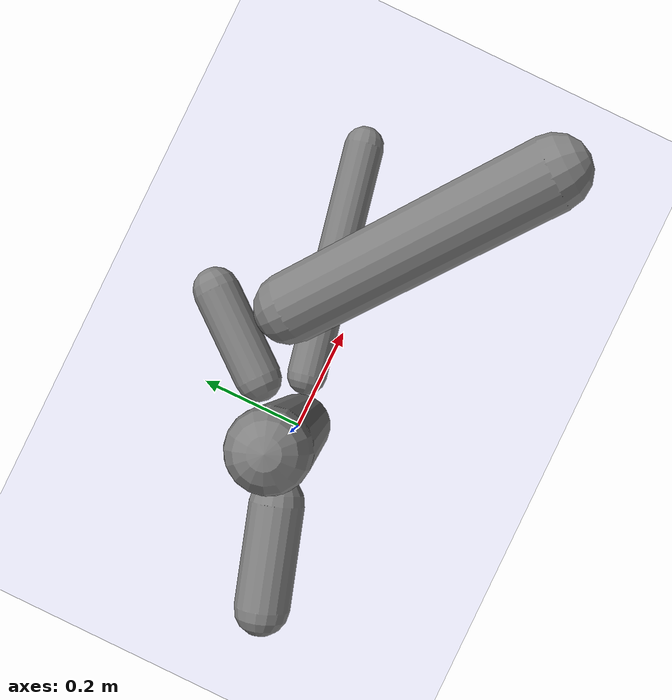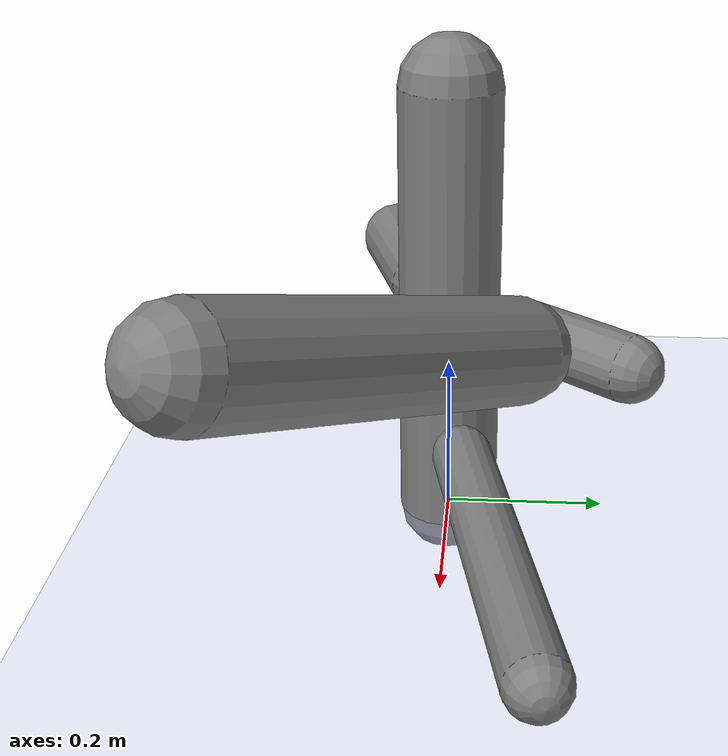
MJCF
<?xml version='1.0' encoding='UTF-8'?>
<mujoco model="robot_model">
  <worldbody>
    <light name="light" pos="0 -3 10" dir="0 0.5 -1" diffuse=".8 .8 .8" specular="0.1 0.1 0.1"/>
    <geom name="floor" type="plane" size="10.0 10.0 0.1" pos="0 0 0" rgba="0.8 0.8 1 1" contype="2" conaffinity="1"/>
    <body name="limb0" pos="0 0 0">
      <geom name="limb0_geom" type="capsule" fromto="0 0 0 0 0 0.5526269610092502" size="0.06246653167678622" density="796.5934046713226" contype="1" conaffinity="2"/>
      <site type="sphere" size="0.01" name="limb0_site0" pos="0.06616385889769526 0.08244480077257166 0.27924548388113235" quat="0.7071067811865476 -0.5514782239966858 0.44257402596341 0.0"/>
      <site type="sphere" size="0.01" name="limb0_site1" pos="0.10046093926683684 0.020852091672058662 0.12507774437851668" quat="0.7071067811865476 -0.14370701995890695 0.6923498338372952 0.0"/>
      <site type="sphere" size="0.01" name="limb0_site2" pos="-0.10815393811490609 -0.034451397314172946 0.26491593429950255" quat="0.7071067811865476 0.21461672715809735 -0.6737504437282003 0.0"/>
      <freejoint name="limb0_root"/>
      <body name="limb1" pos="0.06616385889769526 0.08244480077257166 0.27924548388113235" quat="0.7071067811865476 -0.5514782239966858 0.44257402596341 0.0">
        <geom name="limb1_geom" type="capsule" fromto="0 0 0 0 0 0.16136599457657547" size="0.03924440152628014" density="1063.8814954702987" contype="1" conaffinity="2"/>
        <site type="sphere" size="0.01" name="limb1_site0" pos="0.057378042192360146 -0.08583220095448735 0.07997658092785001" quat="0.7071067811865476 0.5878530016335616 0.3929743610853153 0.0"/>
        <body name="limb2" pos="0.057378042192360146 -0.08583220095448735 0.07997658092785001" quat="0.7071067811865476 0.5878530016335616 0.3929743610853153 0.0">
          <geom name="limb2_geom" type="capsule" fromto="0 0 0 0 0 0.46493007053566165" size="0.06" density="974.6337823020274" contype="1" conaffinity="2"/>
          <joint name="joint_limb1_limb2_0" type="hinge" axis="0 1 0" range="-79.82709602001019 79.82709602001019" damping="5.0"/>
        </body>
        <joint name="joint_limb0_limb1_0" type="hinge" axis="0 0 1" range="-59.96207299018732 59.96207299018732" damping="5.0"/>
      </body>
      <body name="limb3" pos="0.10046093926683684 0.020852091672058662 0.12507774437851668" quat="0.7071067811865476 -0.14370701995890695 0.6923498338372952 0.0">
        <geom name="limb3_geom" type="capsule" fromto="0 0 0 0 0 0.42812311774438233" size="0.03613566150384233" density="1116.2896742078215" contype="1" conaffinity="2"/>
        <joint name="joint_limb0_limb3_0" type="hinge" axis="1 0 0" range="-97.29787056611062 97.29787056611062" damping="5.0"/>
      </body>
      <body name="limb4" pos="-0.10815393811490609 -0.034451397314172946 0.26491593429950255" quat="0.7071067811865476 0.21461672715809735 -0.6737504437282003 0.0">
        <geom name="limb4_geom" type="capsule" fromto="0 0 0 0 0 0.1756841044802058" size="0.04704193984257633" density="984.254461993807" contype="1" conaffinity="2"/>
        <joint name="joint_limb0_limb4_0" type="hinge" axis="0 0 1" range="-65.65785036981373 65.65785036981373" damping="5.0"/>
      </body>
    </body>
  </worldbody>
  <actuator>
    <position name="position_actuator_joint_limb0_limb1_0" joint="joint_limb0_limb1_0" gear="2.0" inheritrange="1" forcerange="-5.499922110006023 5.499922110006023" forcelimited="true" kp="100.0"/>
    <position name="position_actuator_joint_limb1_limb2_0" joint="joint_limb1_limb2_0" gear="1.9440150659978117" inheritrange="1" forcerange="-30.03340775200813 30.03340775200813" forcelimited="true" kp="100.0"/>
    <position name="position_actuator_joint_limb0_limb3_0" joint="joint_limb0_limb3_0" gear="0.523119764181743" inheritrange="1" forcerange="-10.905687069466378 10.905687069466378" forcelimited="true" kp="100.0"/>
    <position name="position_actuator_joint_limb0_limb4_0" joint="joint_limb0_limb4_0" gear="0.5685689044186975" inheritrange="1" forcerange="-8.156731254242125 8.156731254242125" forcelimited="true" kp="100.0"/>
  </actuator>
  <contact>
    <pair geom1="limb0_geom" geom2="limb1_geom"/>
    <pair geom1="limb1_geom" geom2="limb2_geom"/>
    <pair geom1="limb0_geom" geom2="limb3_geom"/>
    <pair geom1="limb0_geom" geom2="limb4_geom"/>
  </contact>
</mujoco>
